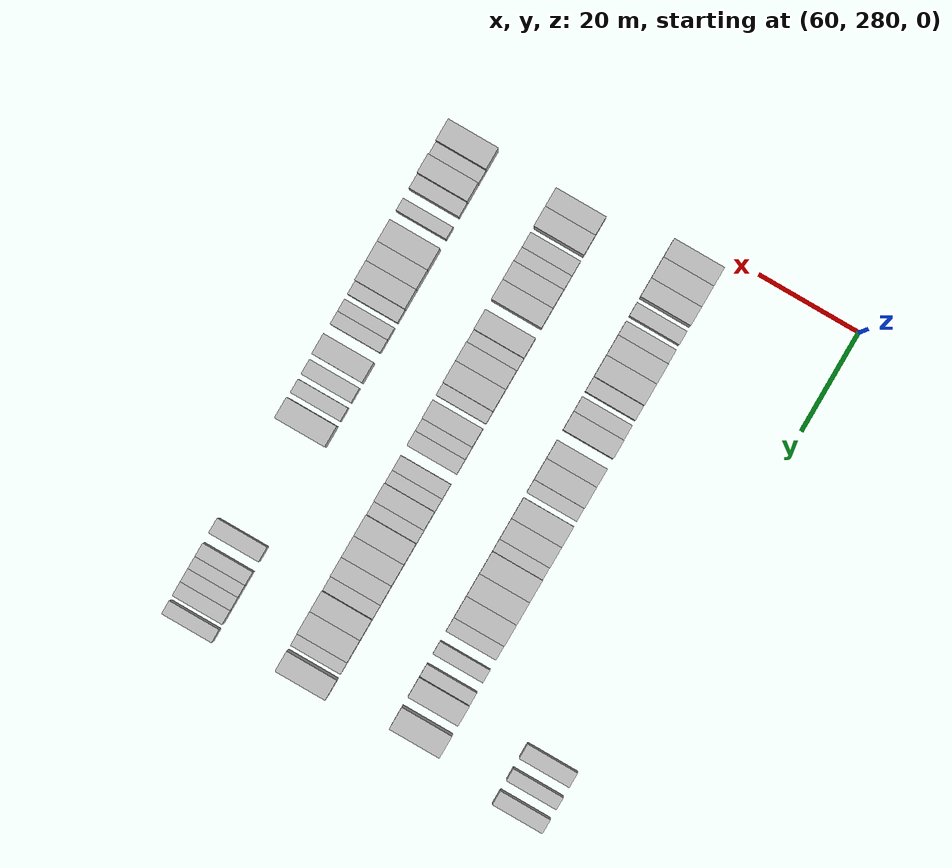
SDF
<sdf version="1.6">
 <world name="default">
  <model name="building_560">
   <static>1</static>
   <pose>69.0000 372.0421 0 0.000000 0.000000 0.000000</pose>
   <link name="link">
    <pose>0 0 3.00 0 0 0</pose>
    <collision name="collision"><geometry><box><size>10.0000 2.9223 6.0000</size></box></geometry></collision>
    <visual name="visual">
     <cast_shadows>0</cast_shadows>
     <geometry><box><size>10.0000 2.9223 6.0000</size></box></geometry>
     <material>
      <script>
       <uri>model://HANNAS_wall/materials/scripts</uri>
       <uri>model://HANNAS_wall/materials/textures</uri>
       <name>vrc/HANNAS_wall</name>
      </script>
     </material>
    </visual>
   </link>
  </model>
  <model name="building_561">
   <static>1</static>
   <pose>69.0000 376.7206 0 0.000000 0.000000 0.000000</pose>
   <link name="link">
    <pose>0 0 3.00 0 0 0</pose>
    <collision name="collision"><geometry><box><size>10.0000 2.4348 6.0000</size></box></geometry></collision>
    <visual name="visual">
     <cast_shadows>0</cast_shadows>
     <geometry><box><size>10.0000 2.4348 6.0000</size></box></geometry>
     <material>
      <script>
       <uri>model://HANNAS_wall/materials/scripts</uri>
       <uri>model://HANNAS_wall/materials/textures</uri>
       <name>vrc/HANNAS_wall</name>
      </script>
     </material>
    </visual>
   </link>
  </model>
  <model name="building_562">
   <static>1</static>
   <pose>69.0000 381.3318 0 0.000000 0.000000 0.000000</pose>
   <link name="link">
    <pose>0 0 3.00 0 0 0</pose>
    <collision name="collision"><geometry><box><size>10.0000 2.7876 6.0000</size></box></geometry></collision>
    <visual name="visual">
     <cast_shadows>0</cast_shadows>
     <geometry><box><size>10.0000 2.7876 6.0000</size></box></geometry>
     <material>
      <script>
       <uri>model://HANNAS_wall/materials/scripts</uri>
       <uri>model://HANNAS_wall/materials/textures</uri>
       <name>vrc/HANNAS_wall</name>
      </script>
     </material>
    </visual>
   </link>
  </model>
  <model name="building_726">
   <static>1</static>
   <pose>91.0000 284.3821 0 0.000000 0.000000 0.000000</pose>
   <link name="link">
    <pose>0 0 4.50 0 0 0</pose>
    <collision name="collision"><geometry><box><size>10.0000 3.6894 9.0000</size></box></geometry></collision>
    <visual name="visual">
     <cast_shadows>0</cast_shadows>
     <geometry><box><size>10.0000 3.6894 9.0000</size></box></geometry>
     <material>
      <script>
       <uri>model://HANNAS_wall/materials/scripts</uri>
       <uri>model://HANNAS_wall/materials/textures</uri>
       <name>vrc/HANNAS_wall</name>
      </script>
     </material>
    </visual>
   </link>
  </model>
  <model name="building_727">
   <static>1</static>
   <pose>91.0000 288.3091 0 0.000000 0.000000 0.000000</pose>
   <link name="link">
    <pose>0 0 4.50 0 0 0</pose>
    <collision name="collision"><geometry><box><size>10.0000 4.1648 9.0000</size></box></geometry></collision>
    <visual name="visual">
     <cast_shadows>0</cast_shadows>
     <geometry><box><size>10.0000 4.1648 9.0000</size></box></geometry>
     <material>
      <script>
       <uri>model://HANNAS_wall/materials/scripts</uri>
       <uri>model://HANNAS_wall/materials/textures</uri>
       <name>vrc/HANNAS_wall</name>
      </script>
     </material>
    </visual>
   </link>
  </model>
  <model name="building_728">
   <static>1</static>
   <pose>91.0000 292.2597 0 0.000000 0.000000 0.000000</pose>
   <link name="link">
    <pose>0 0 4.50 0 0 0</pose>
    <collision name="collision"><geometry><box><size>10.0000 3.7363 9.0000</size></box></geometry></collision>
    <visual name="visual">
     <cast_shadows>0</cast_shadows>
     <geometry><box><size>10.0000 3.7363 9.0000</size></box></geometry>
     <material>
      <script>
       <uri>model://HANNAS_wall/materials/scripts</uri>
       <uri>model://HANNAS_wall/materials/textures</uri>
       <name>vrc/HANNAS_wall</name>
      </script>
     </material>
    </visual>
   </link>
  </model>
  <model name="building_729">
   <static>1</static>
   <pose>91.0000 296.4770 0 0.000000 0.000000 0.000000</pose>
   <link name="link">
    <pose>0 0 3.00 0 0 0</pose>
    <collision name="collision"><geometry><box><size>10.0000 2.6984 6.0000</size></box></geometry></collision>
    <visual name="visual">
     <cast_shadows>0</cast_shadows>
     <geometry><box><size>10.0000 2.6984 6.0000</size></box></geometry>
     <material>
      <script>
       <uri>model://HANNAS_wall/materials/scripts</uri>
       <uri>model://HANNAS_wall/materials/textures</uri>
       <name>vrc/HANNAS_wall</name>
      </script>
     </material>
    </visual>
   </link>
  </model>
  <model name="building_730">
   <static>1</static>
   <pose>91.0000 300.2854 0 0.000000 0.000000 0.000000</pose>
   <link name="link">
    <pose>0 0 3.00 0 0 0</pose>
    <collision name="collision"><geometry><box><size>10.0000 2.9183 6.0000</size></box></geometry></collision>
    <visual name="visual">
     <cast_shadows>0</cast_shadows>
     <geometry><box><size>10.0000 2.9183 6.0000</size></box></geometry>
     <material>
      <script>
       <uri>model://HANNAS_wall/materials/scripts</uri>
       <uri>model://HANNAS_wall/materials/textures</uri>
       <name>vrc/HANNAS_wall</name>
      </script>
     </material>
    </visual>
   </link>
  </model>
  <model name="building_731">
   <static>1</static>
   <pose>91.0000 303.7413 0 0.000000 0.000000 0.000000</pose>
   <link name="link">
    <pose>0 0 4.50 0 0 0</pose>
    <collision name="collision"><geometry><box><size>10.0000 3.9935 9.0000</size></box></geometry></collision>
    <visual name="visual">
     <cast_shadows>0</cast_shadows>
     <geometry><box><size>10.0000 3.9935 9.0000</size></box></geometry>
     <material>
      <script>
       <uri>model://HANNAS_wall/materials/scripts</uri>
       <uri>model://HANNAS_wall/materials/textures</uri>
       <name>vrc/HANNAS_wall</name>
      </script>
     </material>
    </visual>
   </link>
  </model>
  <model name="building_732">
   <static>1</static>
   <pose>91.0000 307.8702 0 0.000000 0.000000 0.000000</pose>
   <link name="link">
    <pose>0 0 4.50 0 0 0</pose>
    <collision name="collision"><geometry><box><size>10.0000 4.2643 9.0000</size></box></geometry></collision>
    <visual name="visual">
     <cast_shadows>0</cast_shadows>
     <geometry><box><size>10.0000 4.2643 9.0000</size></box></geometry>
     <material>
      <script>
       <uri>model://HANNAS_wall/materials/scripts</uri>
       <uri>model://HANNAS_wall/materials/textures</uri>
       <name>vrc/HANNAS_wall</name>
      </script>
     </material>
    </visual>
   </link>
  </model>
  <model name="building_733">
   <static>1</static>
   <pose>91.0000 311.4718 0 0.000000 0.000000 0.000000</pose>
   <link name="link">
    <pose>0 0 3.00 0 0 0</pose>
    <collision name="collision"><geometry><box><size>10.0000 2.9390 6.0000</size></box></geometry></collision>
    <visual name="visual">
     <cast_shadows>0</cast_shadows>
     <geometry><box><size>10.0000 2.9390 6.0000</size></box></geometry>
     <material>
      <script>
       <uri>model://HANNAS_wall/materials/scripts</uri>
       <uri>model://HANNAS_wall/materials/textures</uri>
       <name>vrc/HANNAS_wall</name>
      </script>
     </material>
    </visual>
   </link>
  </model>
  <model name="building_734">
   <static>1</static>
   <pose>91.0000 315.4377 0 0.000000 0.000000 0.000000</pose>
   <link name="link">
    <pose>0 0 3.00 0 0 0</pose>
    <collision name="collision"><geometry><box><size>10.0000 2.9928 6.0000</size></box></geometry></collision>
    <visual name="visual">
     <cast_shadows>0</cast_shadows>
     <geometry><box><size>10.0000 2.9928 6.0000</size></box></geometry>
     <material>
      <script>
       <uri>model://HANNAS_wall/materials/scripts</uri>
       <uri>model://HANNAS_wall/materials/textures</uri>
       <name>vrc/HANNAS_wall</name>
      </script>
     </material>
    </visual>
   </link>
  </model>
  <model name="building_735">
   <static>1</static>
   <pose>91.0000 318.7939 0 0.000000 0.000000 0.000000</pose>
   <link name="link">
    <pose>0 0 4.50 0 0 0</pose>
    <collision name="collision"><geometry><box><size>10.0000 3.7197 9.0000</size></box></geometry></collision>
    <visual name="visual">
     <cast_shadows>0</cast_shadows>
     <geometry><box><size>10.0000 3.7197 9.0000</size></box></geometry>
     <material>
      <script>
       <uri>model://HANNAS_wall/materials/scripts</uri>
       <uri>model://HANNAS_wall/materials/textures</uri>
       <name>vrc/HANNAS_wall</name>
      </script>
     </material>
    </visual>
   </link>
  </model>
  <model name="building_736">
   <static>1</static>
   <pose>91.0000 324.4760 0 0.000000 0.000000 0.000000</pose>
   <link name="link">
    <pose>0 0 4.50 0 0 0</pose>
    <collision name="collision"><geometry><box><size>10.0000 3.6443 9.0000</size></box></geometry></collision>
    <visual name="visual">
     <cast_shadows>0</cast_shadows>
     <geometry><box><size>10.0000 3.6443 9.0000</size></box></geometry>
     <material>
      <script>
       <uri>model://HANNAS_wall/materials/scripts</uri>
       <uri>model://HANNAS_wall/materials/textures</uri>
       <name>vrc/HANNAS_wall</name>
      </script>
     </material>
    </visual>
   </link>
  </model>
  <model name="building_737">
   <static>1</static>
   <pose>91.0000 328.4116 0 0.000000 0.000000 0.000000</pose>
   <link name="link">
    <pose>0 0 4.50 0 0 0</pose>
    <collision name="collision"><geometry><box><size>10.0000 4.2270 9.0000</size></box></geometry></collision>
    <visual name="visual">
     <cast_shadows>0</cast_shadows>
     <geometry><box><size>10.0000 4.2270 9.0000</size></box></geometry>
     <material>
      <script>
       <uri>model://HANNAS_wall/materials/scripts</uri>
       <uri>model://HANNAS_wall/materials/textures</uri>
       <name>vrc/HANNAS_wall</name>
      </script>
     </material>
    </visual>
   </link>
  </model>
  <model name="building_738">
   <static>1</static>
   <pose>91.0000 331.8248 0 0.000000 0.000000 0.000000</pose>
   <link name="link">
    <pose>0 0 3.00 0 0 0</pose>
    <collision name="collision"><geometry><box><size>10.0000 2.5993 6.0000</size></box></geometry></collision>
    <visual name="visual">
     <cast_shadows>0</cast_shadows>
     <geometry><box><size>10.0000 2.5993 6.0000</size></box></geometry>
     <material>
      <script>
       <uri>model://HANNAS_wall/materials/scripts</uri>
       <uri>model://HANNAS_wall/materials/textures</uri>
       <name>vrc/HANNAS_wall</name>
      </script>
     </material>
    </visual>
   </link>
  </model>
  <model name="building_739">
   <static>1</static>
   <pose>91.0000 336.2058 0 0.000000 0.000000 0.000000</pose>
   <link name="link">
    <pose>0 0 4.50 0 0 0</pose>
    <collision name="collision"><geometry><box><size>10.0000 4.1627 9.0000</size></box></geometry></collision>
    <visual name="visual">
     <cast_shadows>0</cast_shadows>
     <geometry><box><size>10.0000 4.1627 9.0000</size></box></geometry>
     <material>
      <script>
       <uri>model://HANNAS_wall/materials/scripts</uri>
       <uri>model://HANNAS_wall/materials/textures</uri>
       <name>vrc/HANNAS_wall</name>
      </script>
     </material>
    </visual>
   </link>
  </model>
  <model name="building_740">
   <static>1</static>
   <pose>91.0000 340.3322 0 0.000000 0.000000 0.000000</pose>
   <link name="link">
    <pose>0 0 4.50 0 0 0</pose>
    <collision name="collision"><geometry><box><size>10.0000 4.0901 9.0000</size></box></geometry></collision>
    <visual name="visual">
     <cast_shadows>0</cast_shadows>
     <geometry><box><size>10.0000 4.0901 9.0000</size></box></geometry>
     <material>
      <script>
       <uri>model://HANNAS_wall/materials/scripts</uri>
       <uri>model://HANNAS_wall/materials/textures</uri>
       <name>vrc/HANNAS_wall</name>
      </script>
     </material>
    </visual>
   </link>
  </model>
  <model name="building_741">
   <static>1</static>
   <pose>91.0000 343.5983 0 0.000000 0.000000 0.000000</pose>
   <link name="link">
    <pose>0 0 3.00 0 0 0</pose>
    <collision name="collision"><geometry><box><size>10.0000 2.4421 6.0000</size></box></geometry></collision>
    <visual name="visual">
     <cast_shadows>0</cast_shadows>
     <geometry><box><size>10.0000 2.4421 6.0000</size></box></geometry>
     <material>
      <script>
       <uri>model://HANNAS_wall/materials/scripts</uri>
       <uri>model://HANNAS_wall/materials/textures</uri>
       <name>vrc/HANNAS_wall</name>
      </script>
     </material>
    </visual>
   </link>
  </model>
  <model name="building_742">
   <static>1</static>
   <pose>91.0000 347.0418 0 0.000000 0.000000 0.000000</pose>
   <link name="link">
    <pose>0 0 4.50 0 0 0</pose>
    <collision name="collision"><geometry><box><size>10.0000 4.4448 9.0000</size></box></geometry></collision>
    <visual name="visual">
     <cast_shadows>0</cast_shadows>
     <geometry><box><size>10.0000 4.4448 9.0000</size></box></geometry>
     <material>
      <script>
       <uri>model://HANNAS_wall/materials/scripts</uri>
       <uri>model://HANNAS_wall/materials/textures</uri>
       <name>vrc/HANNAS_wall</name>
      </script>
     </material>
    </visual>
   </link>
  </model>
  <model name="building_743">
   <static>1</static>
   <pose>91.0000 351.5002 0 0.000000 0.000000 0.000000</pose>
   <link name="link">
    <pose>0 0 4.50 0 0 0</pose>
    <collision name="collision"><geometry><box><size>10.0000 4.4721 9.0000</size></box></geometry></collision>
    <visual name="visual">
     <cast_shadows>0</cast_shadows>
     <geometry><box><size>10.0000 4.4721 9.0000</size></box></geometry>
     <material>
      <script>
       <uri>model://HANNAS_wall/materials/scripts</uri>
       <uri>model://HANNAS_wall/materials/textures</uri>
       <name>vrc/HANNAS_wall</name>
      </script>
     </material>
    </visual>
   </link>
  </model>
  <model name="building_744">
   <static>1</static>
   <pose>91.0000 355.8644 0 0.000000 0.000000 0.000000</pose>
   <link name="link">
    <pose>0 0 4.50 0 0 0</pose>
    <collision name="collision"><geometry><box><size>10.0000 4.2562 9.0000</size></box></geometry></collision>
    <visual name="visual">
     <cast_shadows>0</cast_shadows>
     <geometry><box><size>10.0000 4.2562 9.0000</size></box></geometry>
     <material>
      <script>
       <uri>model://HANNAS_wall/materials/scripts</uri>
       <uri>model://HANNAS_wall/materials/textures</uri>
       <name>vrc/HANNAS_wall</name>
      </script>
     </material>
    </visual>
   </link>
  </model>
  <model name="building_745">
   <static>1</static>
   <pose>91.0000 359.4189 0 0.000000 0.000000 0.000000</pose>
   <link name="link">
    <pose>0 0 3.00 0 0 0</pose>
    <collision name="collision"><geometry><box><size>10.0000 2.8529 6.0000</size></box></geometry></collision>
    <visual name="visual">
     <cast_shadows>0</cast_shadows>
     <geometry><box><size>10.0000 2.8529 6.0000</size></box></geometry>
     <material>
      <script>
       <uri>model://HANNAS_wall/materials/scripts</uri>
       <uri>model://HANNAS_wall/materials/textures</uri>
       <name>vrc/HANNAS_wall</name>
      </script>
     </material>
    </visual>
   </link>
  </model>
  <model name="building_746">
   <static>1</static>
   <pose>91.0000 364.1110 0 0.000000 0.000000 0.000000</pose>
   <link name="link">
    <pose>0 0 3.00 0 0 0</pose>
    <collision name="collision"><geometry><box><size>10.0000 2.5312 6.0000</size></box></geometry></collision>
    <visual name="visual">
     <cast_shadows>0</cast_shadows>
     <geometry><box><size>10.0000 2.5312 6.0000</size></box></geometry>
     <material>
      <script>
       <uri>model://HANNAS_wall/materials/scripts</uri>
       <uri>model://HANNAS_wall/materials/textures</uri>
       <name>vrc/HANNAS_wall</name>
      </script>
     </material>
    </visual>
   </link>
  </model>
  <model name="building_747">
   <static>1</static>
   <pose>91.0000 368.6373 0 0.000000 0.000000 0.000000</pose>
   <link name="link">
    <pose>0 0 3.00 0 0 0</pose>
    <collision name="collision"><geometry><box><size>10.0000 2.5214 6.0000</size></box></geometry></collision>
    <visual name="visual">
     <cast_shadows>0</cast_shadows>
     <geometry><box><size>10.0000 2.5214 6.0000</size></box></geometry>
     <material>
      <script>
       <uri>model://HANNAS_wall/materials/scripts</uri>
       <uri>model://HANNAS_wall/materials/textures</uri>
       <name>vrc/HANNAS_wall</name>
      </script>
     </material>
    </visual>
   </link>
  </model>
  <model name="building_748">
   <static>1</static>
   <pose>91.0000 371.8712 0 0.000000 0.000000 0.000000</pose>
   <link name="link">
    <pose>0 0 4.50 0 0 0</pose>
    <collision name="collision"><geometry><box><size>10.0000 3.9465 9.0000</size></box></geometry></collision>
    <visual name="visual">
     <cast_shadows>0</cast_shadows>
     <geometry><box><size>10.0000 3.9465 9.0000</size></box></geometry>
     <material>
      <script>
       <uri>model://HANNAS_wall/materials/scripts</uri>
       <uri>model://HANNAS_wall/materials/textures</uri>
       <name>vrc/HANNAS_wall</name>
      </script>
     </material>
    </visual>
   </link>
  </model>
  <model name="building_749">
   <static>1</static>
   <pose>91.0000 378.0340 0 0.000000 0.000000 0.000000</pose>
   <link name="link">
    <pose>0 0 4.50 0 0 0</pose>
    <collision name="collision"><geometry><box><size>10.0000 4.3790 9.0000</size></box></geometry></collision>
    <visual name="visual">
     <cast_shadows>0</cast_shadows>
     <geometry><box><size>10.0000 4.3790 9.0000</size></box></geometry>
     <material>
      <script>
       <uri>model://HANNAS_wall/materials/scripts</uri>
       <uri>model://HANNAS_wall/materials/textures</uri>
       <name>vrc/HANNAS_wall</name>
      </script>
     </material>
    </visual>
   </link>
  </model>
  <model name="building_912">
   <static>1</static>
   <pose>113.0000 287.0780 0 0.000000 0.000000 0.000000</pose>
   <link name="link">
    <pose>0 0 4.50 0 0 0</pose>
    <collision name="collision"><geometry><box><size>10.0000 3.6910 9.0000</size></box></geometry></collision>
    <visual name="visual">
     <cast_shadows>0</cast_shadows>
     <geometry><box><size>10.0000 3.6910 9.0000</size></box></geometry>
     <material>
      <script>
       <uri>model://HANNAS_wall/materials/scripts</uri>
       <uri>model://HANNAS_wall/materials/textures</uri>
       <name>vrc/HANNAS_wall</name>
      </script>
     </material>
    </visual>
   </link>
  </model>
  <model name="building_913">
   <static>1</static>
   <pose>113.0000 290.9053 0 0.000000 0.000000 0.000000</pose>
   <link name="link">
    <pose>0 0 4.50 0 0 0</pose>
    <collision name="collision"><geometry><box><size>10.0000 3.9636 9.0000</size></box></geometry></collision>
    <visual name="visual">
     <cast_shadows>0</cast_shadows>
     <geometry><box><size>10.0000 3.9636 9.0000</size></box></geometry>
     <material>
      <script>
       <uri>model://HANNAS_wall/materials/scripts</uri>
       <uri>model://HANNAS_wall/materials/textures</uri>
       <name>vrc/HANNAS_wall</name>
      </script>
     </material>
    </visual>
   </link>
  </model>
  <model name="building_914">
   <static>1</static>
   <pose>113.0000 295.3746 0 0.000000 0.000000 0.000000</pose>
   <link name="link">
    <pose>0 0 3.00 0 0 0</pose>
    <collision name="collision"><geometry><box><size>10.0000 2.9751 6.0000</size></box></geometry></collision>
    <visual name="visual">
     <cast_shadows>0</cast_shadows>
     <geometry><box><size>10.0000 2.9751 6.0000</size></box></geometry>
     <material>
      <script>
       <uri>model://HANNAS_wall/materials/scripts</uri>
       <uri>model://HANNAS_wall/materials/textures</uri>
       <name>vrc/HANNAS_wall</name>
      </script>
     </material>
    </visual>
   </link>
  </model>
  <model name="building_915">
   <static>1</static>
   <pose>113.0000 298.3028 0 0.000000 0.000000 0.000000</pose>
   <link name="link">
    <pose>0 0 3.00 0 0 0</pose>
    <collision name="collision"><geometry><box><size>10.0000 2.8812 6.0000</size></box></geometry></collision>
    <visual name="visual">
     <cast_shadows>0</cast_shadows>
     <geometry><box><size>10.0000 2.8812 6.0000</size></box></geometry>
     <material>
      <script>
       <uri>model://HANNAS_wall/materials/scripts</uri>
       <uri>model://HANNAS_wall/materials/textures</uri>
       <name>vrc/HANNAS_wall</name>
      </script>
     </material>
    </visual>
   </link>
  </model>
  <model name="building_916">
   <static>1</static>
   <pose>113.0000 301.6042 0 0.000000 0.000000 0.000000</pose>
   <link name="link">
    <pose>0 0 4.50 0 0 0</pose>
    <collision name="collision"><geometry><box><size>10.0000 3.7217 9.0000</size></box></geometry></collision>
    <visual name="visual">
     <cast_shadows>0</cast_shadows>
     <geometry><box><size>10.0000 3.7217 9.0000</size></box></geometry>
     <material>
      <script>
       <uri>model://HANNAS_wall/materials/scripts</uri>
       <uri>model://HANNAS_wall/materials/textures</uri>
       <name>vrc/HANNAS_wall</name>
      </script>
     </material>
    </visual>
   </link>
  </model>
  <model name="building_917">
   <static>1</static>
   <pose>113.0000 305.4466 0 0.000000 0.000000 0.000000</pose>
   <link name="link">
    <pose>0 0 4.50 0 0 0</pose>
    <collision name="collision"><geometry><box><size>10.0000 3.9632 9.0000</size></box></geometry></collision>
    <visual name="visual">
     <cast_shadows>0</cast_shadows>
     <geometry><box><size>10.0000 3.9632 9.0000</size></box></geometry>
     <material>
      <script>
       <uri>model://HANNAS_wall/materials/scripts</uri>
       <uri>model://HANNAS_wall/materials/textures</uri>
       <name>vrc/HANNAS_wall</name>
      </script>
     </material>
    </visual>
   </link>
  </model>
  <model name="building_918">
   <static>1</static>
   <pose>113.0000 311.4129 0 0.000000 0.000000 0.000000</pose>
   <link name="link">
    <pose>0 0 4.50 0 0 0</pose>
    <collision name="collision"><geometry><box><size>10.0000 3.9695 9.0000</size></box></geometry></collision>
    <visual name="visual">
     <cast_shadows>0</cast_shadows>
     <geometry><box><size>10.0000 3.9695 9.0000</size></box></geometry>
     <material>
      <script>
       <uri>model://HANNAS_wall/materials/scripts</uri>
       <uri>model://HANNAS_wall/materials/textures</uri>
       <name>vrc/HANNAS_wall</name>
      </script>
     </material>
    </visual>
   </link>
  </model>
  <model name="building_919">
   <static>1</static>
   <pose>113.0000 314.6367 0 0.000000 0.000000 0.000000</pose>
   <link name="link">
    <pose>0 0 3.00 0 0 0</pose>
    <collision name="collision"><geometry><box><size>10.0000 2.4781 6.0000</size></box></geometry></collision>
    <visual name="visual">
     <cast_shadows>0</cast_shadows>
     <geometry><box><size>10.0000 2.4781 6.0000</size></box></geometry>
     <material>
      <script>
       <uri>model://HANNAS_wall/materials/scripts</uri>
       <uri>model://HANNAS_wall/materials/textures</uri>
       <name>vrc/HANNAS_wall</name>
      </script>
     </material>
    </visual>
   </link>
  </model>
  <model name="building_920">
   <static>1</static>
   <pose>113.0000 317.7586 0 0.000000 0.000000 0.000000</pose>
   <link name="link">
    <pose>0 0 4.50 0 0 0</pose>
    <collision name="collision"><geometry><box><size>10.0000 3.7656 9.0000</size></box></geometry></collision>
    <visual name="visual">
     <cast_shadows>0</cast_shadows>
     <geometry><box><size>10.0000 3.7656 9.0000</size></box></geometry>
     <material>
      <script>
       <uri>model://HANNAS_wall/materials/scripts</uri>
       <uri>model://HANNAS_wall/materials/textures</uri>
       <name>vrc/HANNAS_wall</name>
      </script>
     </material>
    </visual>
   </link>
  </model>
  <model name="building_921">
   <static>1</static>
   <pose>113.0000 321.8245 0 0.000000 0.000000 0.000000</pose>
   <link name="link">
    <pose>0 0 4.50 0 0 0</pose>
    <collision name="collision"><geometry><box><size>10.0000 4.3662 9.0000</size></box></geometry></collision>
    <visual name="visual">
     <cast_shadows>0</cast_shadows>
     <geometry><box><size>10.0000 4.3662 9.0000</size></box></geometry>
     <material>
      <script>
       <uri>model://HANNAS_wall/materials/scripts</uri>
       <uri>model://HANNAS_wall/materials/textures</uri>
       <name>vrc/HANNAS_wall</name>
      </script>
     </material>
    </visual>
   </link>
  </model>
  <model name="building_922">
   <static>1</static>
   <pose>113.0000 325.2270 0 0.000000 0.000000 0.000000</pose>
   <link name="link">
    <pose>0 0 3.00 0 0 0</pose>
    <collision name="collision"><geometry><box><size>10.0000 2.4390 6.0000</size></box></geometry></collision>
    <visual name="visual">
     <cast_shadows>0</cast_shadows>
     <geometry><box><size>10.0000 2.4390 6.0000</size></box></geometry>
     <material>
      <script>
       <uri>model://HANNAS_wall/materials/scripts</uri>
       <uri>model://HANNAS_wall/materials/textures</uri>
       <name>vrc/HANNAS_wall</name>
      </script>
     </material>
    </visual>
   </link>
  </model>
  <model name="building_923">
   <static>1</static>
   <pose>113.0000 329.2871 0 0.000000 0.000000 0.000000</pose>
   <link name="link">
    <pose>0 0 4.50 0 0 0</pose>
    <collision name="collision"><geometry><box><size>10.0000 3.6811 9.0000</size></box></geometry></collision>
    <visual name="visual">
     <cast_shadows>0</cast_shadows>
     <geometry><box><size>10.0000 3.6811 9.0000</size></box></geometry>
     <material>
      <script>
       <uri>model://HANNAS_wall/materials/scripts</uri>
       <uri>model://HANNAS_wall/materials/textures</uri>
       <name>vrc/HANNAS_wall</name>
      </script>
     </material>
    </visual>
   </link>
  </model>
  <model name="building_924">
   <static>1</static>
   <pose>113.0000 332.3486 0 0.000000 0.000000 0.000000</pose>
   <link name="link">
    <pose>0 0 3.00 0 0 0</pose>
    <collision name="collision"><geometry><box><size>10.0000 2.4419 6.0000</size></box></geometry></collision>
    <visual name="visual">
     <cast_shadows>0</cast_shadows>
     <geometry><box><size>10.0000 2.4419 6.0000</size></box></geometry>
     <material>
      <script>
       <uri>model://HANNAS_wall/materials/scripts</uri>
       <uri>model://HANNAS_wall/materials/textures</uri>
       <name>vrc/HANNAS_wall</name>
      </script>
     </material>
    </visual>
   </link>
  </model>
  <model name="building_925">
   <static>1</static>
   <pose>113.0000 335.0380 0 0.000000 0.000000 0.000000</pose>
   <link name="link">
    <pose>0 0 3.00 0 0 0</pose>
    <collision name="collision"><geometry><box><size>10.0000 2.9370 6.0000</size></box></geometry></collision>
    <visual name="visual">
     <cast_shadows>0</cast_shadows>
     <geometry><box><size>10.0000 2.9370 6.0000</size></box></geometry>
     <material>
      <script>
       <uri>model://HANNAS_wall/materials/scripts</uri>
       <uri>model://HANNAS_wall/materials/textures</uri>
       <name>vrc/HANNAS_wall</name>
      </script>
     </material>
    </visual>
   </link>
  </model>
  <model name="building_926">
   <static>1</static>
   <pose>113.0000 339.9839 0 0.000000 0.000000 0.000000</pose>
   <link name="link">
    <pose>0 0 3.00 0 0 0</pose>
    <collision name="collision"><geometry><box><size>10.0000 2.9547 6.0000</size></box></geometry></collision>
    <visual name="visual">
     <cast_shadows>0</cast_shadows>
     <geometry><box><size>10.0000 2.9547 6.0000</size></box></geometry>
     <material>
      <script>
       <uri>model://HANNAS_wall/materials/scripts</uri>
       <uri>model://HANNAS_wall/materials/textures</uri>
       <name>vrc/HANNAS_wall</name>
      </script>
     </material>
    </visual>
   </link>
  </model>
  <model name="building_927">
   <static>1</static>
   <pose>113.0000 342.7356 0 0.000000 0.000000 0.000000</pose>
   <link name="link">
    <pose>0 0 3.00 0 0 0</pose>
    <collision name="collision"><geometry><box><size>10.0000 2.5489 6.0000</size></box></geometry></collision>
    <visual name="visual">
     <cast_shadows>0</cast_shadows>
     <geometry><box><size>10.0000 2.5489 6.0000</size></box></geometry>
     <material>
      <script>
       <uri>model://HANNAS_wall/materials/scripts</uri>
       <uri>model://HANNAS_wall/materials/textures</uri>
       <name>vrc/HANNAS_wall</name>
      </script>
     </material>
    </visual>
   </link>
  </model>
  <model name="building_928">
   <static>1</static>
   <pose>113.0000 345.8352 0 0.000000 0.000000 0.000000</pose>
   <link name="link">
    <pose>0 0 4.50 0 0 0</pose>
    <collision name="collision"><geometry><box><size>10.0000 3.6503 9.0000</size></box></geometry></collision>
    <visual name="visual">
     <cast_shadows>0</cast_shadows>
     <geometry><box><size>10.0000 3.6503 9.0000</size></box></geometry>
     <material>
      <script>
       <uri>model://HANNAS_wall/materials/scripts</uri>
       <uri>model://HANNAS_wall/materials/textures</uri>
       <name>vrc/HANNAS_wall</name>
      </script>
     </material>
    </visual>
   </link>
  </model>
  <model name="building_929">
   <static>1</static>
   <pose>113.0000 348.9999 0 0.000000 0.000000 0.000000</pose>
   <link name="link">
    <pose>0 0 3.00 0 0 0</pose>
    <collision name="collision"><geometry><box><size>10.0000 2.6791 6.0000</size></box></geometry></collision>
    <visual name="visual">
     <cast_shadows>0</cast_shadows>
     <geometry><box><size>10.0000 2.6791 6.0000</size></box></geometry>
     <material>
      <script>
       <uri>model://HANNAS_wall/materials/scripts</uri>
       <uri>model://HANNAS_wall/materials/textures</uri>
       <name>vrc/HANNAS_wall</name>
      </script>
     </material>
    </visual>
   </link>
  </model>
  <model name="building_930">
   <static>1</static>
   <pose>113.0000 352.4302 0 0.000000 0.000000 0.000000</pose>
   <link name="link">
    <pose>0 0 4.50 0 0 0</pose>
    <collision name="collision"><geometry><box><size>10.0000 4.1814 9.0000</size></box></geometry></collision>
    <visual name="visual">
     <cast_shadows>0</cast_shadows>
     <geometry><box><size>10.0000 4.1814 9.0000</size></box></geometry>
     <material>
      <script>
       <uri>model://HANNAS_wall/materials/scripts</uri>
       <uri>model://HANNAS_wall/materials/textures</uri>
       <name>vrc/HANNAS_wall</name>
      </script>
     </material>
    </visual>
   </link>
  </model>
  <model name="building_931">
   <static>1</static>
   <pose>113.0000 356.6454 0 0.000000 0.000000 0.000000</pose>
   <link name="link">
    <pose>0 0 4.50 0 0 0</pose>
    <collision name="collision"><geometry><box><size>10.0000 4.2492 9.0000</size></box></geometry></collision>
    <visual name="visual">
     <cast_shadows>0</cast_shadows>
     <geometry><box><size>10.0000 4.2492 9.0000</size></box></geometry>
     <material>
      <script>
       <uri>model://HANNAS_wall/materials/scripts</uri>
       <uri>model://HANNAS_wall/materials/textures</uri>
       <name>vrc/HANNAS_wall</name>
      </script>
     </material>
    </visual>
   </link>
  </model>
  <model name="building_932">
   <static>1</static>
   <pose>113.0000 360.6709 0 0.000000 0.000000 0.000000</pose>
   <link name="link">
    <pose>0 0 4.50 0 0 0</pose>
    <collision name="collision"><geometry><box><size>10.0000 3.8019 9.0000</size></box></geometry></collision>
    <visual name="visual">
     <cast_shadows>0</cast_shadows>
     <geometry><box><size>10.0000 3.8019 9.0000</size></box></geometry>
     <material>
      <script>
       <uri>model://HANNAS_wall/materials/scripts</uri>
       <uri>model://HANNAS_wall/materials/textures</uri>
       <name>vrc/HANNAS_wall</name>
      </script>
     </material>
    </visual>
   </link>
  </model>
  <model name="building_933">
   <static>1</static>
   <pose>113.0000 364.0215 0 0.000000 0.000000 0.000000</pose>
   <link name="link">
    <pose>0 0 3.00 0 0 0</pose>
    <collision name="collision"><geometry><box><size>10.0000 2.8993 6.0000</size></box></geometry></collision>
    <visual name="visual">
     <cast_shadows>0</cast_shadows>
     <geometry><box><size>10.0000 2.8993 6.0000</size></box></geometry>
     <material>
      <script>
       <uri>model://HANNAS_wall/materials/scripts</uri>
       <uri>model://HANNAS_wall/materials/textures</uri>
       <name>vrc/HANNAS_wall</name>
      </script>
     </material>
    </visual>
   </link>
  </model>
  <model name="building_934">
   <static>1</static>
   <pose>113.0000 367.5254 0 0.000000 0.000000 0.000000</pose>
   <link name="link">
    <pose>0 0 4.50 0 0 0</pose>
    <collision name="collision"><geometry><box><size>10.0000 4.1084 9.0000</size></box></geometry></collision>
    <visual name="visual">
     <cast_shadows>0</cast_shadows>
     <geometry><box><size>10.0000 4.1084 9.0000</size></box></geometry>
     <material>
      <script>
       <uri>model://HANNAS_wall/materials/scripts</uri>
       <uri>model://HANNAS_wall/materials/textures</uri>
       <name>vrc/HANNAS_wall</name>
      </script>
     </material>
    </visual>
   </link>
  </model>
  <model name="building_935">
   <static>1</static>
   <pose>113.0000 371.7949 0 0.000000 0.000000 0.000000</pose>
   <link name="link">
    <pose>0 0 4.50 0 0 0</pose>
    <collision name="collision"><geometry><box><size>10.0000 4.4306 9.0000</size></box></geometry></collision>
    <visual name="visual">
     <cast_shadows>0</cast_shadows>
     <geometry><box><size>10.0000 4.4306 9.0000</size></box></geometry>
     <material>
      <script>
       <uri>model://HANNAS_wall/materials/scripts</uri>
       <uri>model://HANNAS_wall/materials/textures</uri>
       <name>vrc/HANNAS_wall</name>
      </script>
     </material>
    </visual>
   </link>
  </model>
  <model name="building_936">
   <static>1</static>
   <pose>113.0000 375.2425 0 0.000000 0.000000 0.000000</pose>
   <link name="link">
    <pose>0 0 3.00 0 0 0</pose>
    <collision name="collision"><geometry><box><size>10.0000 2.4646 6.0000</size></box></geometry></collision>
    <visual name="visual">
     <cast_shadows>0</cast_shadows>
     <geometry><box><size>10.0000 2.4646 6.0000</size></box></geometry>
     <material>
      <script>
       <uri>model://HANNAS_wall/materials/scripts</uri>
       <uri>model://HANNAS_wall/materials/textures</uri>
       <name>vrc/HANNAS_wall</name>
      </script>
     </material>
    </visual>
   </link>
  </model>
  <model name="building_937">
   <static>1</static>
   <pose>113.0000 379.4818 0 0.000000 0.000000 0.000000</pose>
   <link name="link">
    <pose>0 0 4.50 0 0 0</pose>
    <collision name="collision"><geometry><box><size>10.0000 4.0140 9.0000</size></box></geometry></collision>
    <visual name="visual">
     <cast_shadows>0</cast_shadows>
     <geometry><box><size>10.0000 4.0140 9.0000</size></box></geometry>
     <material>
      <script>
       <uri>model://HANNAS_wall/materials/scripts</uri>
       <uri>model://HANNAS_wall/materials/textures</uri>
       <name>vrc/HANNAS_wall</name>
      </script>
     </material>
    </visual>
   </link>
  </model>
  <model name="building_1089">
   <static>1</static>
   <pose>135.0000 286.4641 0 0.000000 0.000000 0.000000</pose>
   <link name="link">
    <pose>0 0 4.50 0 0 0</pose>
    <collision name="collision"><geometry><box><size>10.0000 4.2764 9.0000</size></box></geometry></collision>
    <visual name="visual">
     <cast_shadows>0</cast_shadows>
     <geometry><box><size>10.0000 4.2764 9.0000</size></box></geometry>
     <material>
      <script>
       <uri>model://HANNAS_wall/materials/scripts</uri>
       <uri>model://HANNAS_wall/materials/textures</uri>
       <name>vrc/HANNAS_wall</name>
      </script>
     </material>
    </visual>
   </link>
  </model>
  <model name="building_1090">
   <static>1</static>
   <pose>135.0000 289.9334 0 0.000000 0.000000 0.000000</pose>
   <link name="link">
    <pose>0 0 3.00 0 0 0</pose>
    <collision name="collision"><geometry><box><size>10.0000 2.6621 6.0000</size></box></geometry></collision>
    <visual name="visual">
     <cast_shadows>0</cast_shadows>
     <geometry><box><size>10.0000 2.6621 6.0000</size></box></geometry>
     <material>
      <script>
       <uri>model://HANNAS_wall/materials/scripts</uri>
       <uri>model://HANNAS_wall/materials/textures</uri>
       <name>vrc/HANNAS_wall</name>
      </script>
     </material>
    </visual>
   </link>
  </model>
  <model name="building_1091">
   <static>1</static>
   <pose>135.0000 293.1424 0 0.000000 0.000000 0.000000</pose>
   <link name="link">
    <pose>0 0 4.50 0 0 0</pose>
    <collision name="collision"><geometry><box><size>10.0000 3.7560 9.0000</size></box></geometry></collision>
    <visual name="visual">
     <cast_shadows>0</cast_shadows>
     <geometry><box><size>10.0000 3.7560 9.0000</size></box></geometry>
     <material>
      <script>
       <uri>model://HANNAS_wall/materials/scripts</uri>
       <uri>model://HANNAS_wall/materials/textures</uri>
       <name>vrc/HANNAS_wall</name>
      </script>
     </material>
    </visual>
   </link>
  </model>
  <model name="building_1092">
   <static>1</static>
   <pose>135.0000 296.4588 0 0.000000 0.000000 0.000000</pose>
   <link name="link">
    <pose>0 0 3.00 0 0 0</pose>
    <collision name="collision"><geometry><box><size>10.0000 2.8768 6.0000</size></box></geometry></collision>
    <visual name="visual">
     <cast_shadows>0</cast_shadows>
     <geometry><box><size>10.0000 2.8768 6.0000</size></box></geometry>
     <material>
      <script>
       <uri>model://HANNAS_wall/materials/scripts</uri>
       <uri>model://HANNAS_wall/materials/textures</uri>
       <name>vrc/HANNAS_wall</name>
      </script>
     </material>
    </visual>
   </link>
  </model>
  <model name="building_1093">
   <static>1</static>
   <pose>135.0000 301.1149 0 0.000000 0.000000 0.000000</pose>
   <link name="link">
    <pose>0 0 3.00 0 0 0</pose>
    <collision name="collision"><geometry><box><size>10.0000 2.4353 6.0000</size></box></geometry></collision>
    <visual name="visual">
     <cast_shadows>0</cast_shadows>
     <geometry><box><size>10.0000 2.4353 6.0000</size></box></geometry>
     <material>
      <script>
       <uri>model://HANNAS_wall/materials/scripts</uri>
       <uri>model://HANNAS_wall/materials/textures</uri>
       <name>vrc/HANNAS_wall</name>
      </script>
     </material>
    </visual>
   </link>
  </model>
  <model name="building_1094">
   <static>1</static>
   <pose>135.0000 306.4853 0 0.000000 0.000000 0.000000</pose>
   <link name="link">
    <pose>0 0 4.50 0 0 0</pose>
    <collision name="collision"><geometry><box><size>10.0000 4.3056 9.0000</size></box></geometry></collision>
    <visual name="visual">
     <cast_shadows>0</cast_shadows>
     <geometry><box><size>10.0000 4.3056 9.0000</size></box></geometry>
     <material>
      <script>
       <uri>model://HANNAS_wall/materials/scripts</uri>
       <uri>model://HANNAS_wall/materials/textures</uri>
       <name>vrc/HANNAS_wall</name>
      </script>
     </material>
    </visual>
   </link>
  </model>
  <model name="building_1095">
   <static>1</static>
   <pose>135.0000 310.5685 0 0.000000 0.000000 0.000000</pose>
   <link name="link">
    <pose>0 0 4.50 0 0 0</pose>
    <collision name="collision"><geometry><box><size>10.0000 3.8607 9.0000</size></box></geometry></collision>
    <visual name="visual">
     <cast_shadows>0</cast_shadows>
     <geometry><box><size>10.0000 3.8607 9.0000</size></box></geometry>
     <material>
      <script>
       <uri>model://HANNAS_wall/materials/scripts</uri>
       <uri>model://HANNAS_wall/materials/textures</uri>
       <name>vrc/HANNAS_wall</name>
      </script>
     </material>
    </visual>
   </link>
  </model>
  <model name="building_1096">
   <static>1</static>
   <pose>135.0000 314.4486 0 0.000000 0.000000 0.000000</pose>
   <link name="link">
    <pose>0 0 4.50 0 0 0</pose>
    <collision name="collision"><geometry><box><size>10.0000 3.8996 9.0000</size></box></geometry></collision>
    <visual name="visual">
     <cast_shadows>0</cast_shadows>
     <geometry><box><size>10.0000 3.8996 9.0000</size></box></geometry>
     <material>
      <script>
       <uri>model://HANNAS_wall/materials/scripts</uri>
       <uri>model://HANNAS_wall/materials/textures</uri>
       <name>vrc/HANNAS_wall</name>
      </script>
     </material>
    </visual>
   </link>
  </model>
  <model name="building_1097">
   <static>1</static>
   <pose>135.0000 317.7221 0 0.000000 0.000000 0.000000</pose>
   <link name="link">
    <pose>0 0 3.00 0 0 0</pose>
    <collision name="collision"><geometry><box><size>10.0000 2.6474 6.0000</size></box></geometry></collision>
    <visual name="visual">
     <cast_shadows>0</cast_shadows>
     <geometry><box><size>10.0000 2.6474 6.0000</size></box></geometry>
     <material>
      <script>
       <uri>model://HANNAS_wall/materials/scripts</uri>
       <uri>model://HANNAS_wall/materials/textures</uri>
       <name>vrc/HANNAS_wall</name>
      </script>
     </material>
    </visual>
   </link>
  </model>
  <model name="building_1098">
   <static>1</static>
   <pose>135.0000 321.2501 0 0.000000 0.000000 0.000000</pose>
   <link name="link">
    <pose>0 0 3.00 0 0 0</pose>
    <collision name="collision"><geometry><box><size>10.0000 2.4084 6.0000</size></box></geometry></collision>
    <visual name="visual">
     <cast_shadows>0</cast_shadows>
     <geometry><box><size>10.0000 2.4084 6.0000</size></box></geometry>
     <material>
      <script>
       <uri>model://HANNAS_wall/materials/scripts</uri>
       <uri>model://HANNAS_wall/materials/textures</uri>
       <name>vrc/HANNAS_wall</name>
      </script>
     </material>
    </visual>
   </link>
  </model>
  <model name="building_1099">
   <static>1</static>
   <pose>135.0000 323.7455 0 0.000000 0.000000 0.000000</pose>
   <link name="link">
    <pose>0 0 3.00 0 0 0</pose>
    <collision name="collision"><geometry><box><size>10.0000 2.5825 6.0000</size></box></geometry></collision>
    <visual name="visual">
     <cast_shadows>0</cast_shadows>
     <geometry><box><size>10.0000 2.5825 6.0000</size></box></geometry>
     <material>
      <script>
       <uri>model://HANNAS_wall/materials/scripts</uri>
       <uri>model://HANNAS_wall/materials/textures</uri>
       <name>vrc/HANNAS_wall</name>
      </script>
     </material>
    </visual>
   </link>
  </model>
  <model name="building_1100">
   <static>1</static>
   <pose>135.0000 329.0571 0 0.000000 0.000000 0.000000</pose>
   <link name="link">
    <pose>0 0 4.50 0 0 0</pose>
    <collision name="collision"><geometry><box><size>10.0000 4.0406 9.0000</size></box></geometry></collision>
    <visual name="visual">
     <cast_shadows>0</cast_shadows>
     <geometry><box><size>10.0000 4.0406 9.0000</size></box></geometry>
     <material>
      <script>
       <uri>model://HANNAS_wall/materials/scripts</uri>
       <uri>model://HANNAS_wall/materials/textures</uri>
       <name>vrc/HANNAS_wall</name>
      </script>
     </material>
    </visual>
   </link>
  </model>
  <model name="building_1101">
   <static>1</static>
   <pose>135.0000 333.5522 0 0.000000 0.000000 0.000000</pose>
   <link name="link">
    <pose>0 0 3.00 0 0 0</pose>
    <collision name="collision"><geometry><box><size>10.0000 2.9496 6.0000</size></box></geometry></collision>
    <visual name="visual">
     <cast_shadows>0</cast_shadows>
     <geometry><box><size>10.0000 2.9496 6.0000</size></box></geometry>
     <material>
      <script>
       <uri>model://HANNAS_wall/materials/scripts</uri>
       <uri>model://HANNAS_wall/materials/textures</uri>
       <name>vrc/HANNAS_wall</name>
      </script>
     </material>
    </visual>
   </link>
  </model>
  <model name="building_1102">
   <static>1</static>
   <pose>135.0000 337.3740 0 0.000000 0.000000 0.000000</pose>
   <link name="link">
    <pose>0 0 3.00 0 0 0</pose>
    <collision name="collision"><geometry><box><size>10.0000 2.6940 6.0000</size></box></geometry></collision>
    <visual name="visual">
     <cast_shadows>0</cast_shadows>
     <geometry><box><size>10.0000 2.6940 6.0000</size></box></geometry>
     <material>
      <script>
       <uri>model://HANNAS_wall/materials/scripts</uri>
       <uri>model://HANNAS_wall/materials/textures</uri>
       <name>vrc/HANNAS_wall</name>
      </script>
     </material>
    </visual>
   </link>
  </model>
  <model name="building_1103">
   <static>1</static>
   <pose>135.0000 341.7822 0 0.000000 0.000000 0.000000</pose>
   <link name="link">
    <pose>0 0 4.50 0 0 0</pose>
    <collision name="collision"><geometry><box><size>10.0000 4.1223 9.0000</size></box></geometry></collision>
    <visual name="visual">
     <cast_shadows>0</cast_shadows>
     <geometry><box><size>10.0000 4.1223 9.0000</size></box></geometry>
     <material>
      <script>
       <uri>model://HANNAS_wall/materials/scripts</uri>
       <uri>model://HANNAS_wall/materials/textures</uri>
       <name>vrc/HANNAS_wall</name>
      </script>
     </material>
    </visual>
   </link>
  </model>
  <model name="building_1104">
   <static>1</static>
   <pose>135.0000 365.3047 0 0.000000 0.000000 0.000000</pose>
   <link name="link">
    <pose>0 0 3.00 0 0 0</pose>
    <collision name="collision"><geometry><box><size>10.0000 2.9742 6.0000</size></box></geometry></collision>
    <visual name="visual">
     <cast_shadows>0</cast_shadows>
     <geometry><box><size>10.0000 2.9742 6.0000</size></box></geometry>
     <material>
      <script>
       <uri>model://HANNAS_wall/materials/scripts</uri>
       <uri>model://HANNAS_wall/materials/textures</uri>
       <name>vrc/HANNAS_wall</name>
      </script>
     </material>
    </visual>
   </link>
  </model>
  <model name="building_1105">
   <static>1</static>
   <pose>135.0000 370.1304 0 0.000000 0.000000 0.000000</pose>
   <link name="link">
    <pose>0 0 3.00 0 0 0</pose>
    <collision name="collision"><geometry><box><size>10.0000 2.6771 6.0000</size></box></geometry></collision>
    <visual name="visual">
     <cast_shadows>0</cast_shadows>
     <geometry><box><size>10.0000 2.6771 6.0000</size></box></geometry>
     <material>
      <script>
       <uri>model://HANNAS_wall/materials/scripts</uri>
       <uri>model://HANNAS_wall/materials/textures</uri>
       <name>vrc/HANNAS_wall</name>
      </script>
     </material>
    </visual>
   </link>
  </model>
  <model name="building_1106">
   <static>1</static>
   <pose>135.0000 372.6826 0 0.000000 0.000000 0.000000</pose>
   <link name="link">
    <pose>0 0 3.00 0 0 0</pose>
    <collision name="collision"><geometry><box><size>10.0000 2.4273 6.0000</size></box></geometry></collision>
    <visual name="visual">
     <cast_shadows>0</cast_shadows>
     <geometry><box><size>10.0000 2.4273 6.0000</size></box></geometry>
     <material>
      <script>
       <uri>model://HANNAS_wall/materials/scripts</uri>
       <uri>model://HANNAS_wall/materials/textures</uri>
       <name>vrc/HANNAS_wall</name>
      </script>
     </material>
    </visual>
   </link>
  </model>
  <model name="building_1107">
   <static>1</static>
   <pose>135.0000 375.2117 0 0.000000 0.000000 0.000000</pose>
   <link name="link">
    <pose>0 0 3.00 0 0 0</pose>
    <collision name="collision"><geometry><box><size>10.0000 2.6309 6.0000</size></box></geometry></collision>
    <visual name="visual">
     <cast_shadows>0</cast_shadows>
     <geometry><box><size>10.0000 2.6309 6.0000</size></box></geometry>
     <material>
      <script>
       <uri>model://HANNAS_wall/materials/scripts</uri>
       <uri>model://HANNAS_wall/materials/textures</uri>
       <name>vrc/HANNAS_wall</name>
      </script>
     </material>
    </visual>
   </link>
  </model>
  <model name="building_1108">
   <static>1</static>
   <pose>135.0000 377.9178 0 0.000000 0.000000 0.000000</pose>
   <link name="link">
    <pose>0 0 3.00 0 0 0</pose>
    <collision name="collision"><geometry><box><size>10.0000 2.7812 6.0000</size></box></geometry></collision>
    <visual name="visual">
     <cast_shadows>0</cast_shadows>
     <geometry><box><size>10.0000 2.7812 6.0000</size></box></geometry>
     <material>
      <script>
       <uri>model://HANNAS_wall/materials/scripts</uri>
       <uri>model://HANNAS_wall/materials/textures</uri>
       <name>vrc/HANNAS_wall</name>
      </script>
     </material>
    </visual>
   </link>
  </model>
  <model name="building_1109">
   <static>1</static>
   <pose>135.0000 381.6251 0 0.000000 0.000000 0.000000</pose>
   <link name="link">
    <pose>0 0 3.00 0 0 0</pose>
    <collision name="collision"><geometry><box><size>10.0000 2.6333 6.0000</size></box></geometry></collision>
    <visual name="visual">
     <cast_shadows>0</cast_shadows>
     <geometry><box><size>10.0000 2.6333 6.0000</size></box></geometry>
     <material>
      <script>
       <uri>model://HANNAS_wall/materials/scripts</uri>
       <uri>model://HANNAS_wall/materials/textures</uri>
       <name>vrc/HANNAS_wall</name>
      </script>
     </material>
    </visual>
   </link>
  </model>
 </world>
</sdf>
